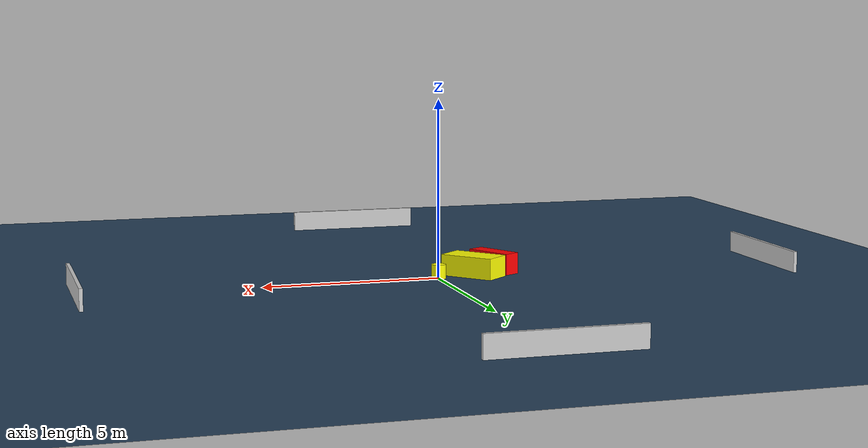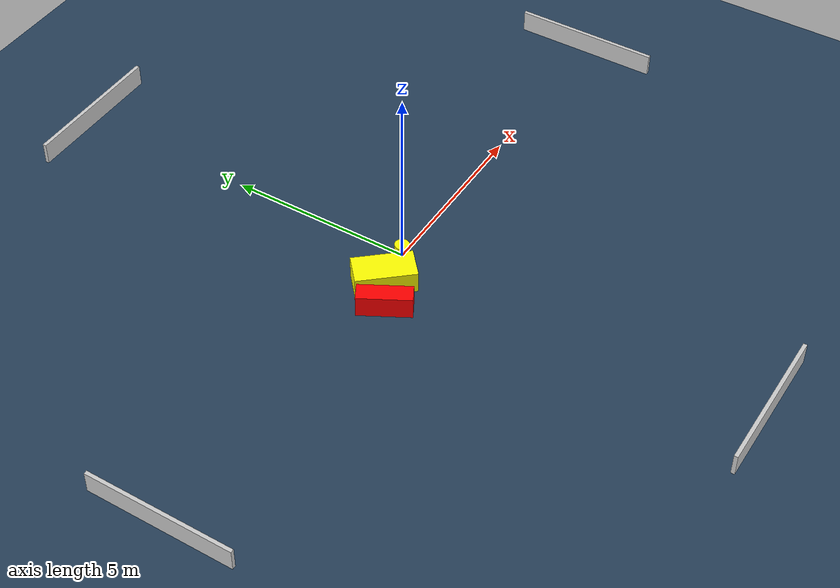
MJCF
<?xml version="1.0" ?>
<mujoco model="generated_environment">
  <option timestep="0.01" integrator="RK4" cone="elliptic"/>
  <default>
    <geom density="1"/>
  </default>
  <asset>
    <texture builtin="gradient" height="3072" name="skybox" rgb1="0.3 0.5 0.7" rgb2="0 0 0" type="skybox" width="512"/>
    <texture builtin="checker" height="300" name="groundplane" rgb1="0.2 0.3 0.4" rgb2="0.1 0.2 0.3" type="2d" width="300"/>
    <material name="groundplane" reflectance="0.2" texrepeat="5 5" texture="groundplane"/>
  </asset>
  <worldbody>
    <light dir="0 0 -1" directional="true" pos="0 0 1.5"/>
    <geom condim="3" friction="0.5 0.005 0.001" material="groundplane" name="floor" pos="0 0 0" size="0 0 0.05" type="plane"/>
    <body name="walls">
      <geom name="wall_1" condim="4" pos="-10.0 0.0 0.3" rgba="0.800000011920929 0.800000011920929 0.800000011920929 1.0" size="0.05 2.0 0.3" type="box"/>
      <geom name="wall_2" condim="4" pos="10.0 0.0 0.3" rgba="0.800000011920929 0.800000011920929 0.800000011920929 1.0" size="0.05 2.0 0.3" type="box"/>
      <geom name="wall_3" condim="4" pos="0.0 -10.0 0.3" rgba="0.800000011920929 0.800000011920929 0.800000011920929 1.0" size="2.0 0.05 0.3" type="box"/>
      <geom name="wall_4" condim="4" pos="0.0 10.0 0.3" rgba="0.800000011920929 0.800000011920929 0.800000011920929 1.0" size="2.0 0.05 0.3" type="box"/>
    </body>
    <body name="robot">
      <joint name="joint_x" type="slide" pos="0 0 0" axis="1 0 0"/>
      <joint name="joint_y" type="slide" pos="0 0 0" axis="0 1 0"/>
      <geom name="robot" type="cylinder" pos="0.0 0.0 0.2" size="0.2 0.2 0.0" mass="5.0" friction="1.0 0.005 0.0001" condim="4" rgba="1.0 1.0 0.0 1.0"/>
    </body>
    <body name="obstacle_1_movable">
      <geom name="obstacle_1_movable" condim="4" pos="-1.0603485480426438 -0.13366125941026447 0.3" euler="0 0 41.22591793778943" friction="0.0 0.005 0.001" rgba="1.0 1.0 0.0 1.0" size="0.4190618655672134 0.7962627464157983 0.3" type="box" mass="0.1"/>
      <joint type="free"/>
    </body>
    <body name="obstacle_2_static">
      <geom name="obstacle_2_static" condim="4" pos="-1.8266969203118089 -0.6345473767878208 0.3" euler="0 0 298.8922282839833" friction="0.0 0.005 0.001" rgba="1.0 0.0 0.0 1.0" size="0.709952037304451 0.24378655670810206 0.3" type="box"/>
    </body>
  </worldbody>
  <actuator>
    <motor name="actuator_x" joint="joint_x" gear="1" ctrlrange="-1 1"/>
    <motor name="actuator_y" joint="joint_y" gear="1" ctrlrange="-1 1"/>
  </actuator>
</mujoco>
